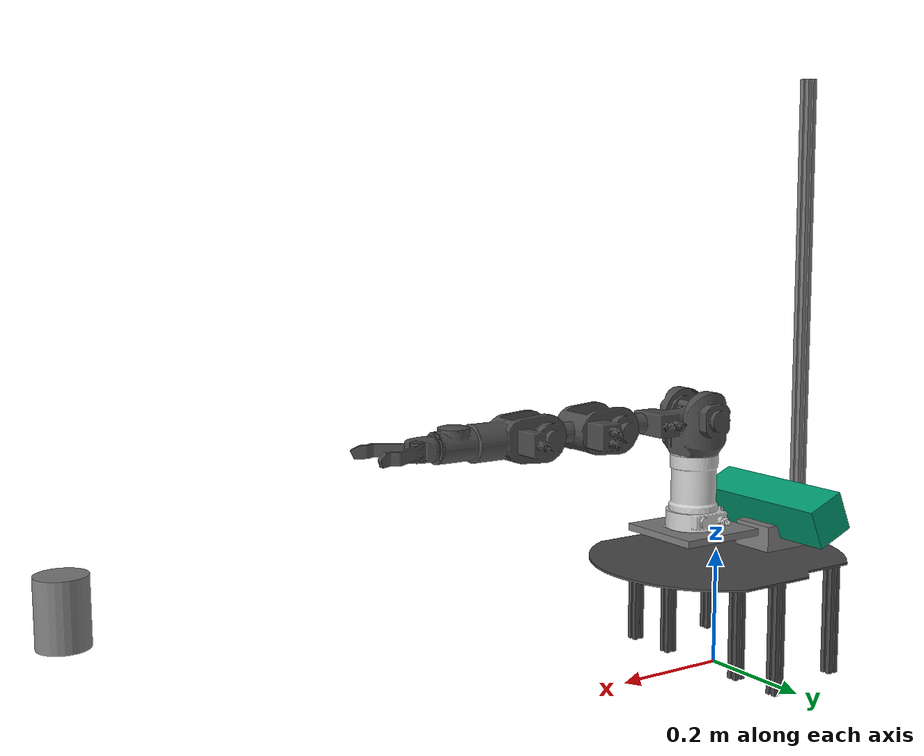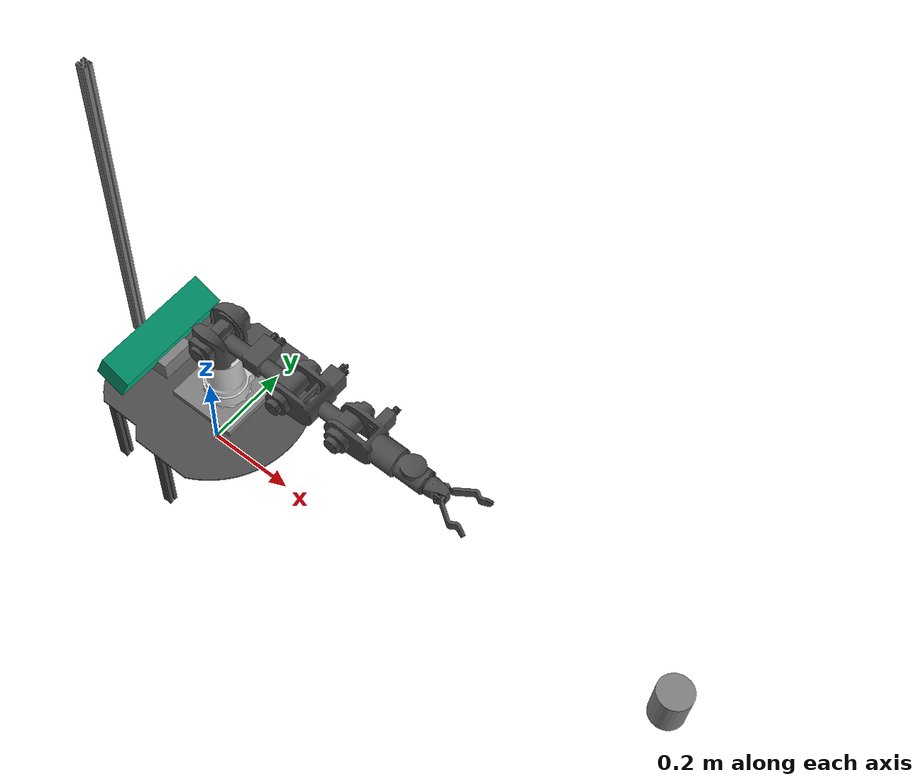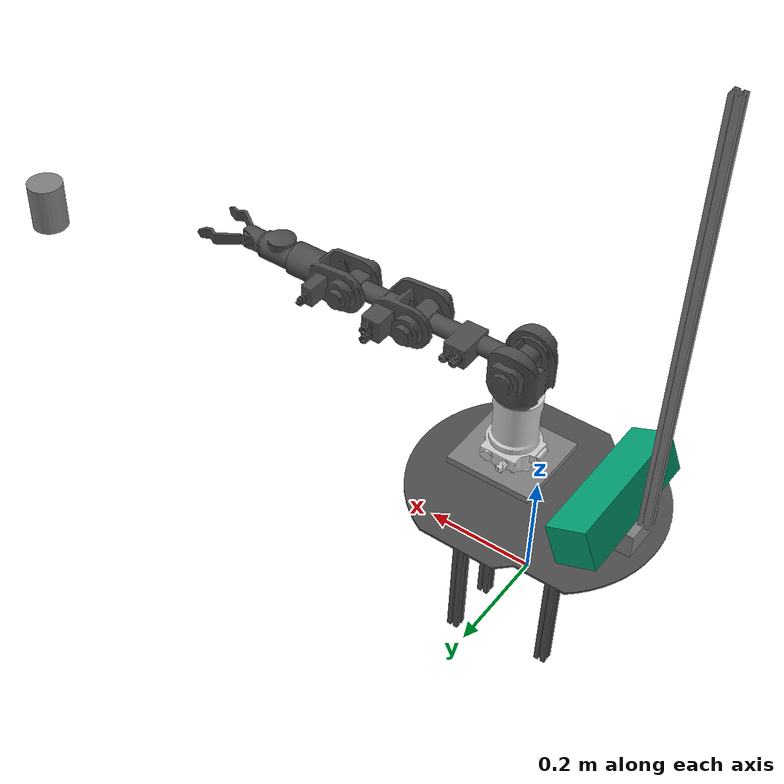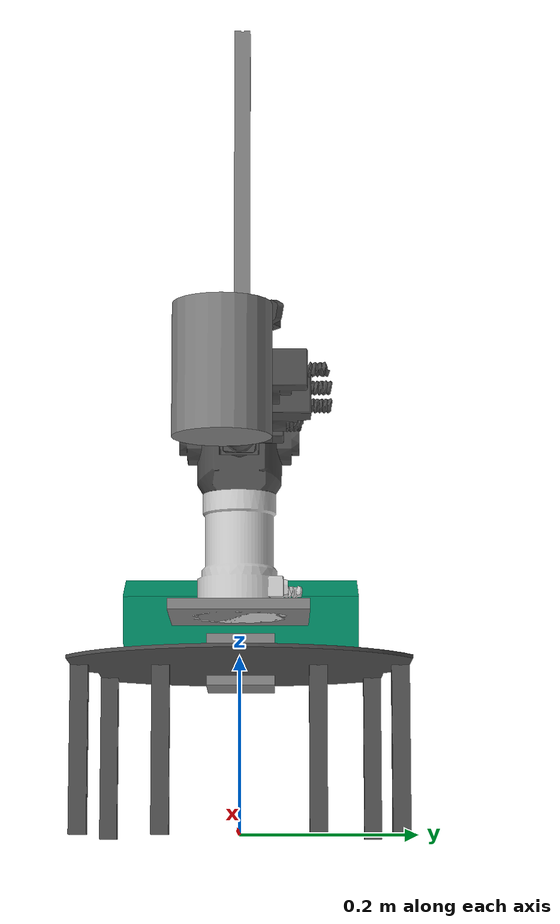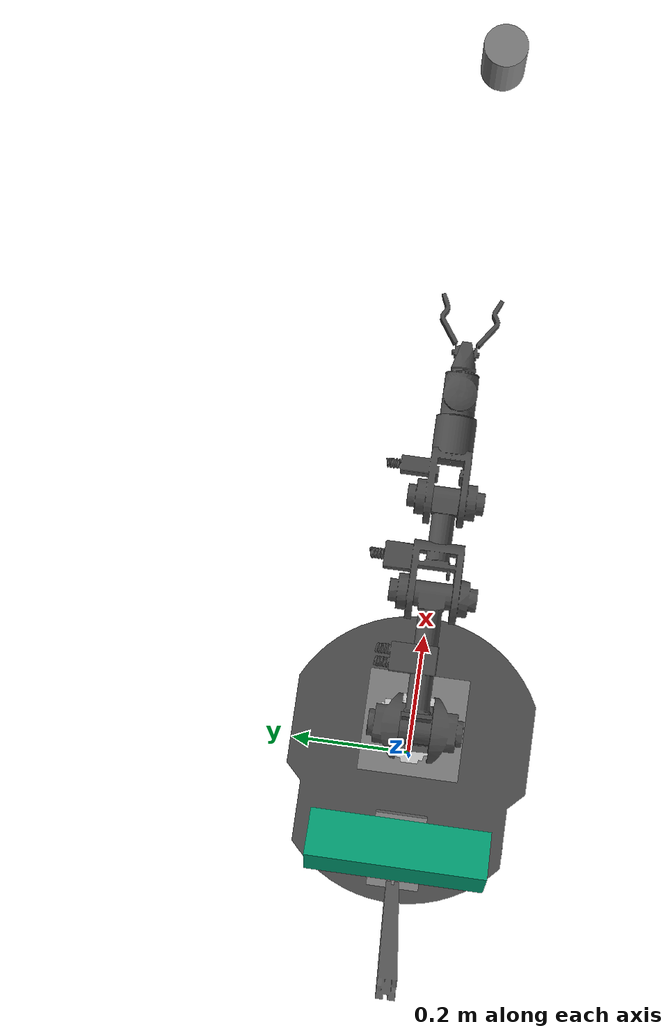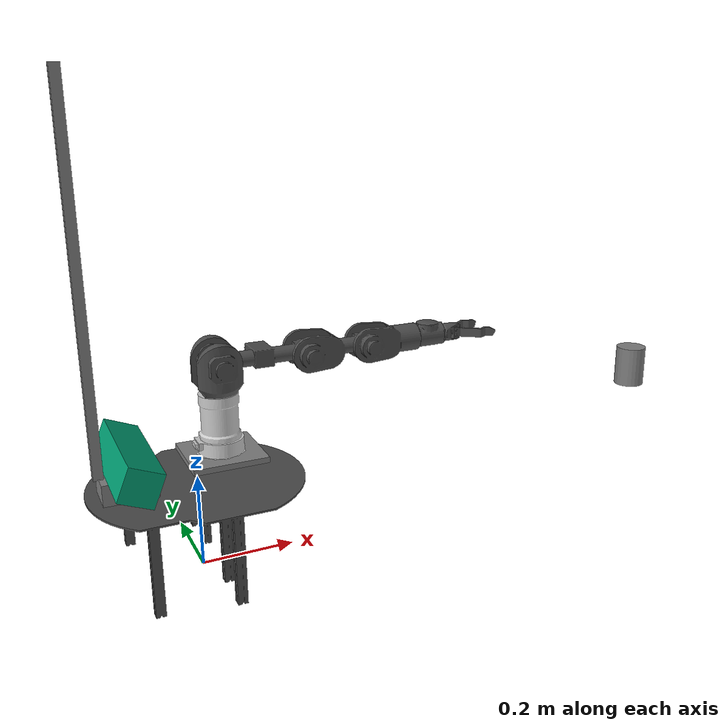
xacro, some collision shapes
<?xml version="1.0" encoding="UTF-8"?>
<robot xmlns:controller="http://playerstage.sourceforge.net/gazebo/xmlschema/#controller" xmlns:sensor="http://playerstage.sourceforge.net/gazebo/xmlschema/#sensor" xmlns:xacro="http://ros.org/wiki/xacro" name="katana">
  <xacro:include filename="$(find katana_description)/urdf/transmissions.urdf.xacro" />
  <xacro:include filename="$(find katana_description)/urdf/transmissions.urdf.xacro" />

<link name="base_link" />

<link name="base_frame">
	<visual>
	<origin rpy="0 0 0" xyz="0 0 0"/>
	<geometry>
		<mesh filename="package://hsmakata_description/meshes/base_frame.stl"/>
	</geometry>
	<material name="grey">
	<color rgba="0.3 0.3 0.3 1"/>
	</material>
	</visual>
</link>

<joint name="base_link_to_base_frame" type="fixed">
	<parent link="base_link"/>
	<child link="base_frame"/>
	<origin rpy="0 0 0" xyz="0.0 0.0 0.0" />
</joint>

<link name="dummy_base_plate"/>

<joint name="dummy_joint" type="fixed">
<parent link="base_frame"/>
<origin rpy="0 0 0" xyz="0.0 0.0 0.236" />
<child link="dummy_base_plate"/>
</joint>

<joint name="base_frame_to_katana_base_plate" type="fixed">
<origin rpy="0 0 0" xyz="0.054 0 0.002" />
<parent link="dummy_base_plate"/>
<child link="katana_base_plate"/>
</joint>

<link name="katana_base_plate">
<visual>
<geometry>
<mesh filename="package://hsmakata_description/meshes/katana_base_plate.stl"/>
</geometry>
<material name="grey">
<color rgba="0.5 0.5 0.5 1" />
</material>
</visual>
</link>

<link name="cup">
<visual>
<geometry>
<cylinder radius="0.036" length="0.097"/>
</geometry>
<material name="grey">
<color rgba="0.5 0.5 0.5 1" />
</material>
</visual>
</link>

<joint name="base_link_to_cup" type="fixed">
    <parent link="katana_base_plate" />
    <child link="cup" />
    <origin rpy="0 0 0" xyz="1.078 0 0.048" />
  </joint>

  <!-- *** Neuronics Katana Arm *** -->
  <xacro:include filename="$(find katana_description)/urdf/katana_400_6m180.urdf.xacro" />
  <joint name="base_link_to_katana" type="fixed">
    <parent link="katana_base_plate" />
    <child link="katana_base_link" />
    <origin rpy="0 0 0" xyz="0 0 0" />
  </joint>

  <!-- ***** Pole and Kinect ****** -->
  <joint name="base_link_to_pole" type="fixed">
    <parent link="dummy_base_plate" />
    <child link="pole" />
    <origin rpy="0 0 0" xyz="-0.195 0 0" />
  </joint>

<link name="pole">
    <visual>
      <geometry>
       <mesh filename="package://hsmakata_description/meshes/pole2.stl"/>
      </geometry>
      <material name="grey">
        <color rgba="0.5 0.5 0.5 1" />
      </material>
    </visual>
  </link>

<joint name="tripod_joint" type="fixed">
<parent link= "pole"/>
<child link= "tripod_link"/>
<origin rpy="0 0 0" xyz="0.055 0 -0.03" />

</joint>

  <link name="tripod_link">
    <visual>
      <origin rpy="0 0 0" xyz="0 0 0" />
      <geometry>
        <box size="0.11 0.08 0.06" />
      </geometry>
      <material name="grey">
        <color rgba="0.5 0.5 0.5 1" />
      </material>
    </visual>
    <collision>
      <origin rpy="0 0 0" xyz="0.03 0 0" />
      <geometry>
        <box size="0.11 0.08 0.06" />
      </geometry>
    </collision>
    <inertial>
      <mass value="0.01" />
      <origin rpy="0 0 0" xyz="0.03 0 0" />
      <inertia ixx="2.54166565e-05" ixy="0.0" ixz="0.0" iyy="6.666664e-06" iyz="0.0" izz="2.94166549e-05" />
    </inertial>
  </link>

<joint name="tripod_kinect_joint" type="fixed">
    <parent link="tripod_link" />
    <child link="kinect_link" />
    <origin rpy="0 0.3901 0" xyz="0.04 0.0 0.058" />
    <limit effort="1000.0" lower="-1.57079632679" upper="1.57079632679" velocity="2.0" />
  </joint>

  <link name="kinect_link">
    <visual>
      <origin rpy="0 0 0" xyz="0.0 0 0" />
      <geometry>
        <mesh filename="package://pr2_description/meshes/sensors/kinect_v0/kinect.dae" scale="0.001 0.001 0.001" />
      </geometry>
    </visual>
    <collision>
      <origin rpy="0 0 0" xyz="-0.0315 0 -0.017" />
      <geometry>
        <box size="0.0730 0.2760 0.0720" />
      </geometry>
    </collision>
    <inertial>
      <mass value="0.43" />
      <origin xyz="0 0 0" />
      <inertia ixx="0.00291539883384" ixy="0.0" ixz="0.0" iyy="0.000376715682647" iyz="0.0" izz="0.0029205946651" />
    </inertial>
  </link>

  <joint name="kinect_depth_joint" type="fixed">
    <origin rpy="0 0 0" xyz="0 0.018 0"/>
    <parent link="kinect_link"/>
    <child link="kinect_depth_frame"/>
  </joint>
  <link name="kinect_depth_frame">
    <inertial>
      <mass value="0.000001"/>
      <origin xyz="0 0 0"/>
      <inertia ixx="0.0001" ixy="0.0" ixz="0.0" iyy="0.0001" iyz="0.0" izz="0.0001"/>
    </inertial>
  </link>
  <joint name="kinect_depth_optical_joint" type="fixed">
    <origin rpy="-1.57079632679 0 -1.57079632679" xyz="0 0 0"/>
    <parent link="kinect_depth_frame"/>
    <child link="kinect_depth_optical_frame"/>
  </joint>
  <link name="kinect_depth_optical_frame">
    <inertial>
      <mass value="0.000001"/>
      <origin xyz="0 0 0"/>
      <inertia ixx="0.0001" ixy="0.0" ixz="0.0" iyy="0.0001" iyz="0.0" izz="0.0001"/>
    </inertial>
  </link>
  <gazebo reference="kinect_depth_frame">
    <sensor name="kinect_depth_frame_ir_sensor" type="depth">
      <always_on>true</always_on>
      <update_rate>1.0</update_rate>
      <camera>
        <horizontal_fov>0.994837673637</horizontal_fov>
        <image>
          <format>L8</format>
          <width>640</width>
          <height>480</height>
        </image>
        <clip>
          <near>0.01</near>
          <far>5</far>
        </clip>
      </camera>
      <plugin filename="libgazebo_ros_openni_kinect.so" name="kinect_depth_frame_controller">
        <alwaysOn>true</alwaysOn>
        <updateRate>1.0</updateRate>
        <cameraName>kinect_ir</cameraName>
        <imageTopicName>/kinect/depth/image_raw</imageTopicName>
        <cameraInfoTopicName>/kinect/depth/camera_info</cameraInfoTopicName>
        <depthImageTopicName>/kinect/depth/image_raw</depthImageTopicName>
        <depthImageCameraInfoTopicName>/kinect/depth/camera_info</depthImageCameraInfoTopicName>
        <pointCloudTopicName>/kinect/depth/points</pointCloudTopicName>
        <frameName>kinect_depth_optical_frame</frameName>
        <pointCloudCutoff>0.5</pointCloudCutoff>
        <distortionK1>0.00000001</distortionK1>
        <distortionK2>0.00000001</distortionK2>
        <distortionK3>0.00000001</distortionK3>
        <distortionT1>0.00000001</distortionT1>
        <distortionT2>0.00000001</distortionT2>
      </plugin>
    </sensor>
    <material value="Gazebo/Red"/>
  </gazebo>
  <joint name="kinect_rgb_joint" type="fixed">
    <origin rpy="0 0 0" xyz="0 -0.005 0"/>
    <parent link="kinect_link"/>
    <child link="kinect_rgb_frame"/>
  </joint>
  <link name="kinect_rgb_frame">
    <inertial>
      <mass value="0.000001"/>
      <origin xyz="0 0 0"/>
      <inertia ixx="0.0001" ixy="0.0" ixz="0.0" iyy="0.0001" iyz="0.0" izz="0.0001"/>
    </inertial>
  </link>
  <joint name="kinect_rgb_optical_joint" type="fixed">
    <origin rpy="-1.57079632679 0 -1.57079632679" xyz="0 0 0"/>
    <parent link="kinect_rgb_frame"/>
    <child link="kinect_rgb_optical_frame"/>
  </joint>
  <link name="kinect_rgb_optical_frame">
    <inertial>
      <mass value="0.000001"/>
      <origin xyz="0 0 0"/>
      <inertia ixx="0.0001" ixy="0.0" ixz="0.0" iyy="0.0001" iyz="0.0" izz="0.0001"/>
    </inertial>
  </link>
  <gazebo reference="kinect_rgb_frame">
    <sensor name="kinect_rgb_sensor" type="depth">
      <always_on>true</always_on>
      <update_rate>1.0</update_rate>
      <camera>
        <horizontal_fov>0.994837673637</horizontal_fov>
        <image>
          <format>R8G8B8</format>
          <width>640</width>
          <height>480</height>
        </image>
        <clip>
          <near>0.01</near>
          <far>5</far>
        </clip>
      </camera>
      <plugin filename="libgazebo_ros_openni_kinect.so" name="kinect_rgb_frame_controller">
        <alwaysOn>true</alwaysOn>
        <updateRate>1.0</updateRate>
        <cameraName>kinect_rgb</cameraName>
        <imageTopicName>/kinect/rgb/image_raw</imageTopicName>
        <cameraInfoTopicName>/kinect/rgb/camera_info</cameraInfoTopicName>
        <depthImageTopicName>/kinect/depth/image_raw</depthImageTopicName>
        <depthImageCameraInfoTopicName>/kinect/depth/camera_info</depthImageCameraInfoTopicName>
        <pointCloudTopicName>/kinect/depth_registered/points</pointCloudTopicName>
        <frameName>kinect_rgb_optical_frame</frameName>
        <pointCloudCutoff>0.5</pointCloudCutoff>
        <distortionK1>0.00000001</distortionK1>
        <distortionK2>0.00000001</distortionK2>
        <distortionK3>0.00000001</distortionK3>
        <distortionT1>0.00000001</distortionT1>
        <distortionT2>0.00000001</distortionT2>
      </plugin>
    </sensor>
    <material value="Gazebo/Red"/>
  </gazebo>

</robot>

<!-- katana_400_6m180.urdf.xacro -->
<robot xmlns:xacro="http://ros.org/wiki/xacro"
  name="katana_400_6m180">

  <xacro:include filename="$(find katana_description)/urdf/transmissions.urdf.xacro"/>
  <xacro:include filename="$(find katana_description)/urdf/gazebo.urdf.xacro"/>

  <property name="M_PI" value="3.1415926535897931" />

  <!-- all values from the katana manual -->
  <property name="base_height" value="0.2015" />
  <property name="link2_length" value="0.19" />
  <property name="link3_length" value="0.139" />
  <property name="link4_length" value="0.1523" />
  <property name="link5_length" value="0.1505" />

  <!-- All inertial values (mass, center of mass and inertia tensor) have been
       calculated from the meshes using MeshLab -->
  <!-- the effort limits have been measured experimentally from the maximum effort the Gazebo controller
       uses in normal conditions -->

  <link name="katana_base_link">
    <visual>
      <origin xyz="0 0 0" rpy="0 0 0" />
      <geometry>
        <mesh filename="package://katana_description/meshes/katana/katana_base_link.stl"/>
      </geometry>

      <material name="grey">
        <color rgba="0.8 0.8 0.8 1"/>
      </material>
    </visual>
    <collision>
      <origin xyz="0 0 0" rpy="0 0 0" />
      <geometry>
        <mesh filename="package://katana_description/meshes/katana/convex/katana_base_link_convex.stl"/>
      </geometry>
    </collision>
    <inertial>
      <mass value="1.4047990875" />
      <origin xyz="-0.000327 0.000908 0.058457"/>
      <inertia ixx="0.003000703" ixy="0.000000864" ixz="-0.000011312"
        iyy="0.002974822" iyz="0.000036294"
        izz="0.001434739" />
    </inertial>
  </link>

  <joint name="katana_motor1_pan_joint" type="revolute">
    <!-- Joint 1 in Katana Manual -->
    <parent link="katana_base_link"/>
    <child link="katana_motor1_pan_link" />
    <origin xyz="0 0 ${base_height}" rpy="0 0 0"/>
    <axis xyz="0 0 1"/>
    <limit effort="1.5" lower="-3.025528" upper="2.891097" velocity="2.208932"/>
  </joint>

  <link name="katana_motor1_pan_link">
    <visual>
      <origin xyz="0 0 ${-base_height}" rpy="0 0 0" />
      <geometry>
        <mesh filename="package://katana_description/meshes/katana/katana_motor1_pan_link.stl"/>
      </geometry>

      <material name="grey" />
    </visual>
    <collision>
      <origin xyz="0 0 ${-base_height}" rpy="0 0 0" />
      <geometry>
        <mesh filename="package://katana_description/meshes/katana/convex/katana_motor1_pan_link_convex.stl"/>
      </geometry>
    </collision>
    <inertial>
      <mass value="0.74793301875" />
      <origin xyz="-0.000410 -0.001285 -0.016774" />
      <inertia ixx="0.001737241" ixy="0.000000421" ixz="0.000000650"
        iyy="0.000998782" iyz="0.000016114"
        izz="0.001349170" />
    </inertial>
  </link>

  <joint name="katana_motor2_lift_joint" type="revolute">
    <!-- Joint 2 in Katana Manual -->
    <parent link="katana_motor1_pan_link" />
    <child link="katana_motor2_lift_link" />
    <origin xyz="0 0 0" rpy="${M_PI/2} 0 0"/>
    <axis xyz="0 0 1"/>
    <limit effort="0.6" lower="-0.135228" upper="2.168572"  velocity="1.190799"/>
  </joint>

  <link name="katana_motor2_lift_link">
    <visual>
      <origin rpy="${-M_PI/2} 0 0" xyz="0 0 0"/>
      <geometry>
        <mesh filename="package://katana_description/meshes/katana/katana_motor2_lift_link.stl"/>
      </geometry>

        <material name="grey" />
      </visual>
      <collision>
        <origin rpy="${-M_PI/2} 0 0" xyz="0 0 0"/>
        <geometry>
          <mesh filename="package://katana_description/meshes/katana/convex/katana_motor2_lift_link_convex.stl"/>
        </geometry>
      </collision>
      <inertial>
        <mass value="0.80174941875" />
        <origin xyz="0.092420 0.005283 0.000172"/>
        <inertia ixx="0.000478252" ixy="0.000081166" ixz="0.000003961"
          iyy="0.004314636" iyz="0.000000332"
          izz="0.004625444" />
      </inertial>
    </link>

    <joint name="katana_motor3_lift_joint" type="revolute">
      <!-- Joint 3 in Katana Manual -->
      <parent link="katana_motor2_lift_link" />
      <child  link="katana_motor3_lift_link" />
      <origin xyz="${link2_length} 0 0" rpy="0 0 0"/>
      <axis xyz="0 0 1"/>
      <!-- unexplicably, the measured velocity limit of this motor is exactly half of what vel_enc2rad(180) says -->
      <limit effort="0.25" lower="-2.221804" upper="2.054223"  velocity="1.190799"/>
    </joint>

    <link name="katana_motor3_lift_link">
      <visual>
        <origin rpy="${-M_PI/2} 0 0" xyz="0 0 0"/>
        <geometry>
          <mesh filename="package://katana_description/meshes/katana/katana_motor3_lift_link.stl"/>
        </geometry>

        <material name="grey" />
      </visual>
      <collision>
        <origin rpy="${-M_PI/2} 0 0" xyz="0 0 0"/>
        <geometry>
          <mesh filename="package://katana_description/meshes/katana/convex/katana_motor3_lift_link_convex.stl"/>
        </geometry>
      </collision>
      <inertial>
        <mass value="0.79241664375" />
        <origin xyz="0.058036 0.008963 -0.000187"/>
        <inertia ixx="0.001156089" ixy="0.000112877" ixz="-0.000004398"
          iyy="0.002305646" iyz="-0.000000036"
          izz="0.003128648" />
      </inertial>
    </link>

    <joint name="katana_motor4_lift_joint" type="revolute">
      <!-- Joint 4 in Katana Manual -->
      <parent link="katana_motor3_lift_link" />
      <child  link="katana_motor4_lift_link" />
      <origin rpy="${M_PI} 0 0" xyz="${link3_length} 0 0"/>
      <axis xyz="0 0 1"/>
      <limit effort="0.1" lower="-2.033309" upper="1.876133"  velocity="2.208932"/>
    </joint>

    <link name="katana_motor4_lift_link">
      <visual>
        <origin rpy="${M_PI/2} 0 0" xyz="0 0 0"/>
        <geometry>
          <mesh filename="package://katana_description/meshes/katana/katana_motor4_lift_link.stl"/>
        </geometry>

        <material name="grey" />
      </visual>
      <collision>
        <origin rpy="${M_PI/2} 0 0" xyz="0 0 0"/>
        <geometry>
          <mesh filename="package://katana_description/meshes/katana/convex/katana_motor4_lift_link_convex.stl"/>
        </geometry>
      </collision>
      <inertial>
        <mass value="0.69149323125" />
        <origin xyz="0.050401 0.005807 0.000000"/>
        <inertia ixx="0.000765999" ixy="0.000045260" ixz="-0.000001210"
          iyy="0.001504115" iyz="0.000000147"
          izz="0.001887277" />
      </inertial>
    </link>

    <joint name="katana_motor5_wrist_roll_joint" type="revolute">
      <!-- Joint 5 in Katana Manual -->
      <parent link="katana_motor4_lift_link" />
      <child  link="katana_motor5_wrist_roll_link" />
      <origin rpy="${M_PI/2} 0 ${-M_PI/2}" xyz="${link4_length} 0 0"/>
      <axis xyz="0 0 1"/>
      <limit effort="0.01" lower="-2.993240" upper="2.870985"  velocity="2.208932"/>
    </joint>

    <link name="katana_motor5_wrist_roll_link">
      <visual>
        <origin rpy="0 ${M_PI} 0" xyz="0 0 0"/>
        <geometry>
          <mesh filename="package://katana_description/meshes/katana/katana_motor5_wrist_roll_link.stl"/>
        </geometry>

        <material name="grey" />
      </visual>
      <collision>
        <origin rpy="0 ${M_PI} 0" xyz="0 0 0"/>
        <geometry>
          <mesh filename="package://katana_description/meshes/katana/convex/katana_motor5_wrist_roll_link_convex.stl"/>
        </geometry>
      </collision>
      <inertial>
        <mass value="0.25622555625" />
        <origin xyz="-0.003140899 0.000013920 0.001680144"/>
        <inertia ixx="0.000120481" ixy="0.000000015" ixz="-0.000001089"
          iyy="0.000132130" iyz="-0.000000124"
          izz="0.000093522" />
      </inertial>
    </link>

    <joint name="katana_gripper_joint" type="fixed">
      <parent link="katana_motor5_wrist_roll_link" />
      <child link="katana_gripper_link" />
      <origin rpy="0 ${M_PI/2} 0" xyz="0 0 -0.0323"/>
    </joint>

    <link name="katana_gripper_link">
      <visual>
        <origin rpy="0 ${M_PI} 0" xyz="0 0 0"/>
        <geometry>
          <mesh filename="package://katana_description/meshes/katana/katana_gripper_link.stl"/>
        </geometry>

        <material name="grey" />
      </visual>
      <collision>
        <origin rpy="0 ${M_PI} 0" xyz="0 0 0"/>
        <geometry>
          <mesh filename="package://katana_description/meshes/katana/convex/katana_gripper_link_convex.stl"/>
        </geometry>
      </collision>
      <inertial>
        <mass value="0.0552136183596" />
        <origin xyz="-0.014379 -0.000000 0.000006"/>
        <inertia ixx="0.000011468" ixy="0.000000000" ixz="0.000000007"
          iyy="0.000013830" iyz="0.000000000"
          izz="0.000011290" /></inertial>
    </link>

    <xacro:macro name="finger" params="prefix rotate">
      <joint name="katana_${prefix}_finger_joint" type="revolute">
        <parent link="katana_gripper_link" />
        <child  link="katana_${prefix}_finger_link" />
        <origin rpy="${rotate} 0 0" xyz="0.034 0 0"/>
        <axis xyz="0 0 1"/>
        <limit effort="0.5" lower="-0.44" upper="0.30"  velocity="0.718834"/>
      </joint>

      <link name="katana_${prefix}_finger_link">
        <visual>
          <origin rpy="0 ${M_PI} 0" xyz="0 0 0"/>
          <geometry>
            <mesh filename="package://katana_description/meshes/katana/katana_gripper_${prefix}_finger.stl"/>
          </geometry>

          <material name="grey" />
        </visual>
        <collision>
          <origin rpy="0 ${M_PI} 0" xyz="0 0 0"/>
          <geometry>
            <mesh filename="package://katana_description/meshes/katana/convex/katana_gripper_${prefix}_finger_convex.stl"/>
          </geometry>
        </collision>
        <inertial>
          <mass value="0.0251722230462" />
          <origin xyz="${0.034 + (-0.032216)} 0.025167 -.001603"/>
          <inertia ixx="0.000005990" ixy="0.000008473" ixz="0.000001448"
            iyy="0.000019757" iyz="-0.000000996"
            izz="0.000023588" />
        </inertial>
      </link>
    </xacro:macro>

    <xacro:finger prefix="r" rotate="0" />
    <xacro:finger prefix="l" rotate="${M_PI}" />

    <joint name="katana_gripper_tool_frame_joint" type="fixed">
      <parent link="katana_motor5_wrist_roll_link"/>
      <child link="katana_gripper_tool_frame" />
      <origin xyz="0 0 -${link5_length}" rpy="0 ${M_PI/2} 0"/>
    </joint>

    <link name="katana_gripper_tool_frame">
      <!-- This is the coordinate system of the tool (this is the position
         used in IK etc., relative to the base frame); there is no actual
         arm part attached to this link -->
  </link>

  <joint name="katana_base_frame_joint" type="fixed">
    <parent link="katana_base_link"/>
    <child link="katana_base_frame" />
    <origin xyz="0 0 ${base_height}" rpy="0 0 0"/>
  </joint>

  <link name="katana_base_frame">
    <!-- This is the reference coordinate system of the arm (the KNI kinematics are specified
         in this frame); there is no actual arm part attached to this link -->
  </link>

</robot>
